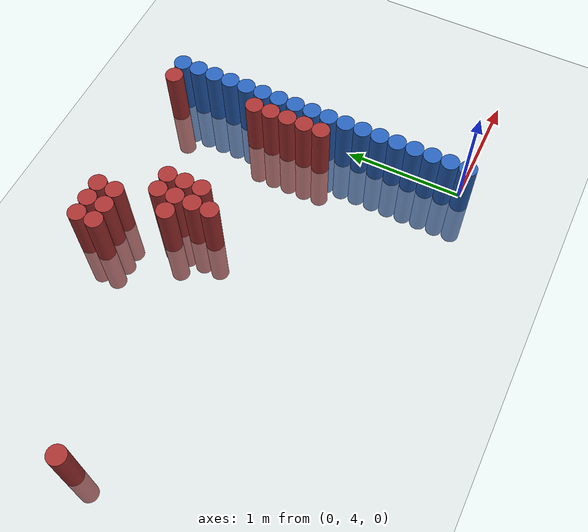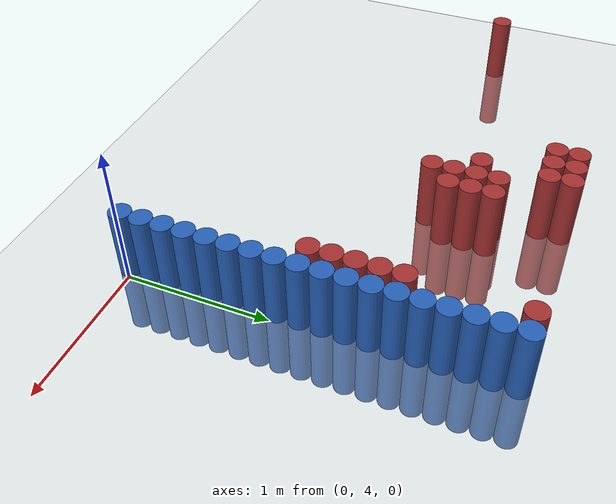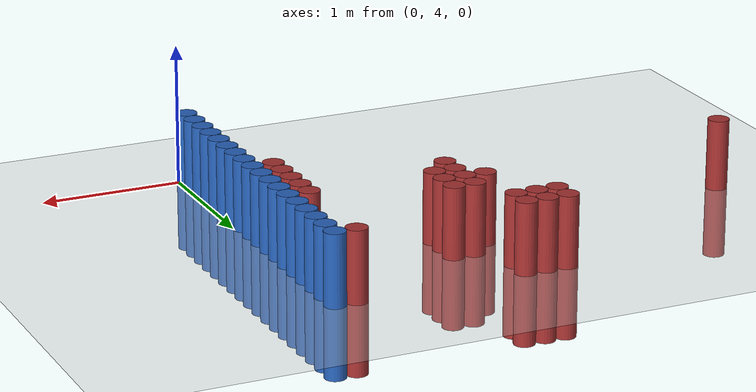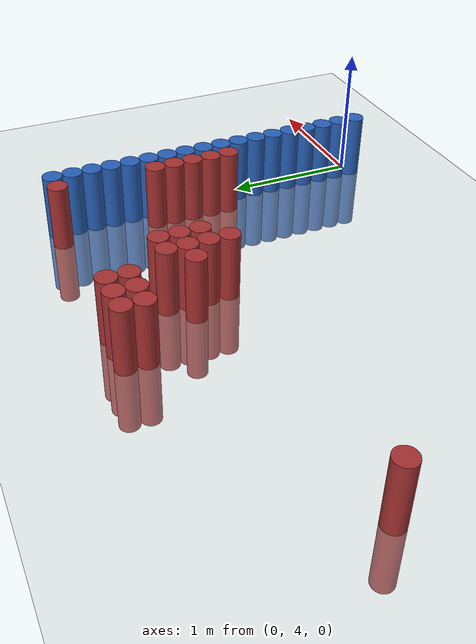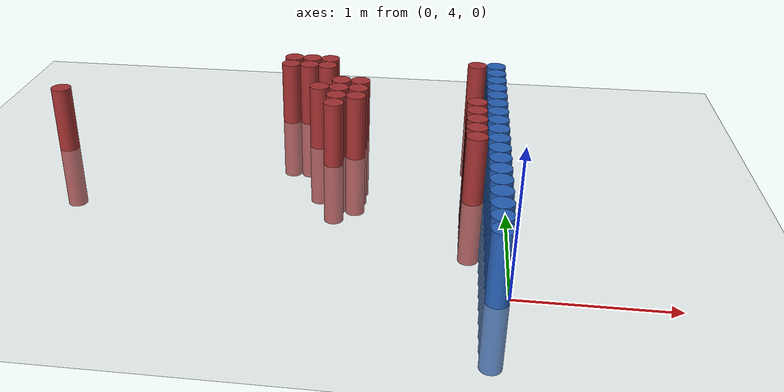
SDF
<sdf version="1.6">
 <world name="default">
  <model name="ground_plane">
   <static>1</static>
   <link name="link">
    <collision name="collision">
     <geometry><plane><normal>0 0 1</normal><size>100 100</size></plane></geometry>
     <surface><friction><ode><mu>100</mu><mu2>50</mu2></ode></friction></surface>
    </collision>
    <visual name="visual">
     <cast_shadows>0</cast_shadows>
     <geometry><plane><normal>0 0 1</normal><size>100 100</size></plane></geometry>
     <material>
      <script><uri>file://media/materials/scripts/gazebo.material</uri><name>Gazebo/Grey</name></script>
     </material>
    </visual>
   </link>
  </model>
  <model name="unit_cylinder_80">
   <static>1</static>
   <pose>-0.075000 3.975000 0.000000 0.000000 0.000000 0.000000</pose>
   <link name="link">
    <inertial>
     <mass>1</mass>
     <inertia><ixx>0.145833</ixx><ixy>0</ixy><ixz>0</ixz><iyy>0.145833</iyy><iyz>0</iyz><izz>0.125</izz></inertia>
    </inertial>
    <collision name="collision">
     <geometry><cylinder><radius>0.075000</radius><length>1</length></cylinder></geometry>
    </collision>
    <visual name="visual">
     <geometry><cylinder><radius>0.075000</radius><length>1</length></cylinder></geometry>
     <material>
      <ambient>0.152000 0.379000 0.720000 1</ambient>
      <diffuse>0.152000 0.379000 0.720000 1</diffuse>
     </material>
     <material>
      <script><name>Gazebo/Grey</name><uri>file://media/materials/scripts/gazebo.material</uri></script>
     </material>
    </visual>
    <sensor name="sensor_contact" type="contact"><contact><collision>collision</collision></contact></sensor>
   </link>
   <plugin filename="gz-sim-touchplugin-system" name="gz::sim::systems::TouchPlugin">
    <target>robot</target>
    <namespace>robot</namespace>
    <time>0.001</time>
    <enabled>true</enabled>
   </plugin>
  </model>
  <model name="unit_cylinder_82">
   <static>1</static>
   <pose>-0.075000 4.125000 0.000000 0.000000 0.000000 0.000000</pose>
   <link name="link">
    <inertial>
     <mass>1</mass>
     <inertia><ixx>0.145833</ixx><ixy>0</ixy><ixz>0</ixz><iyy>0.145833</iyy><iyz>0</iyz><izz>0.125</izz></inertia>
    </inertial>
    <collision name="collision">
     <geometry><cylinder><radius>0.075000</radius><length>1</length></cylinder></geometry>
    </collision>
    <visual name="visual">
     <geometry><cylinder><radius>0.075000</radius><length>1</length></cylinder></geometry>
     <material>
      <ambient>0.152000 0.379000 0.720000 1</ambient>
      <diffuse>0.152000 0.379000 0.720000 1</diffuse>
     </material>
     <material>
      <script><name>Gazebo/Grey</name><uri>file://media/materials/scripts/gazebo.material</uri></script>
     </material>
    </visual>
    <sensor name="sensor_contact" type="contact"><contact><collision>collision</collision></contact></sensor>
   </link>
   <plugin filename="gz-sim-touchplugin-system" name="gz::sim::systems::TouchPlugin">
    <target>robot</target>
    <namespace>robot</namespace>
    <time>0.001</time>
    <enabled>true</enabled>
   </plugin>
  </model>
  <model name="unit_cylinder_84">
   <static>1</static>
   <pose>-0.075000 4.275000 0.000000 0.000000 0.000000 0.000000</pose>
   <link name="link">
    <inertial>
     <mass>1</mass>
     <inertia><ixx>0.145833</ixx><ixy>0</ixy><ixz>0</ixz><iyy>0.145833</iyy><iyz>0</iyz><izz>0.125</izz></inertia>
    </inertial>
    <collision name="collision">
     <geometry><cylinder><radius>0.075000</radius><length>1</length></cylinder></geometry>
    </collision>
    <visual name="visual">
     <geometry><cylinder><radius>0.075000</radius><length>1</length></cylinder></geometry>
     <material>
      <ambient>0.152000 0.379000 0.720000 1</ambient>
      <diffuse>0.152000 0.379000 0.720000 1</diffuse>
     </material>
     <material>
      <script><name>Gazebo/Grey</name><uri>file://media/materials/scripts/gazebo.material</uri></script>
     </material>
    </visual>
    <sensor name="sensor_contact" type="contact"><contact><collision>collision</collision></contact></sensor>
   </link>
   <plugin filename="gz-sim-touchplugin-system" name="gz::sim::systems::TouchPlugin">
    <target>robot</target>
    <namespace>robot</namespace>
    <time>0.001</time>
    <enabled>true</enabled>
   </plugin>
  </model>
  <model name="unit_cylinder_86">
   <static>1</static>
   <pose>-0.075000 4.425000 0.000000 0.000000 0.000000 0.000000</pose>
   <link name="link">
    <inertial>
     <mass>1</mass>
     <inertia><ixx>0.145833</ixx><ixy>0</ixy><ixz>0</ixz><iyy>0.145833</iyy><iyz>0</iyz><izz>0.125</izz></inertia>
    </inertial>
    <collision name="collision">
     <geometry><cylinder><radius>0.075000</radius><length>1</length></cylinder></geometry>
    </collision>
    <visual name="visual">
     <geometry><cylinder><radius>0.075000</radius><length>1</length></cylinder></geometry>
     <material>
      <ambient>0.152000 0.379000 0.720000 1</ambient>
      <diffuse>0.152000 0.379000 0.720000 1</diffuse>
     </material>
     <material>
      <script><name>Gazebo/Grey</name><uri>file://media/materials/scripts/gazebo.material</uri></script>
     </material>
    </visual>
    <sensor name="sensor_contact" type="contact"><contact><collision>collision</collision></contact></sensor>
   </link>
   <plugin filename="gz-sim-touchplugin-system" name="gz::sim::systems::TouchPlugin">
    <target>robot</target>
    <namespace>robot</namespace>
    <time>0.001</time>
    <enabled>true</enabled>
   </plugin>
  </model>
  <model name="unit_cylinder_88">
   <static>1</static>
   <pose>-0.075000 4.575000 0.000000 0.000000 0.000000 0.000000</pose>
   <link name="link">
    <inertial>
     <mass>1</mass>
     <inertia><ixx>0.145833</ixx><ixy>0</ixy><ixz>0</ixz><iyy>0.145833</iyy><iyz>0</iyz><izz>0.125</izz></inertia>
    </inertial>
    <collision name="collision">
     <geometry><cylinder><radius>0.075000</radius><length>1</length></cylinder></geometry>
    </collision>
    <visual name="visual">
     <geometry><cylinder><radius>0.075000</radius><length>1</length></cylinder></geometry>
     <material>
      <ambient>0.152000 0.379000 0.720000 1</ambient>
      <diffuse>0.152000 0.379000 0.720000 1</diffuse>
     </material>
     <material>
      <script><name>Gazebo/Grey</name><uri>file://media/materials/scripts/gazebo.material</uri></script>
     </material>
    </visual>
    <sensor name="sensor_contact" type="contact"><contact><collision>collision</collision></contact></sensor>
   </link>
   <plugin filename="gz-sim-touchplugin-system" name="gz::sim::systems::TouchPlugin">
    <target>robot</target>
    <namespace>robot</namespace>
    <time>0.001</time>
    <enabled>true</enabled>
   </plugin>
  </model>
  <model name="unit_cylinder_90">
   <static>1</static>
   <pose>-0.075000 4.725000 0.000000 0.000000 0.000000 0.000000</pose>
   <link name="link">
    <inertial>
     <mass>1</mass>
     <inertia><ixx>0.145833</ixx><ixy>0</ixy><ixz>0</ixz><iyy>0.145833</iyy><iyz>0</iyz><izz>0.125</izz></inertia>
    </inertial>
    <collision name="collision">
     <geometry><cylinder><radius>0.075000</radius><length>1</length></cylinder></geometry>
    </collision>
    <visual name="visual">
     <geometry><cylinder><radius>0.075000</radius><length>1</length></cylinder></geometry>
     <material>
      <ambient>0.152000 0.379000 0.720000 1</ambient>
      <diffuse>0.152000 0.379000 0.720000 1</diffuse>
     </material>
     <material>
      <script><name>Gazebo/Grey</name><uri>file://media/materials/scripts/gazebo.material</uri></script>
     </material>
    </visual>
    <sensor name="sensor_contact" type="contact"><contact><collision>collision</collision></contact></sensor>
   </link>
   <plugin filename="gz-sim-touchplugin-system" name="gz::sim::systems::TouchPlugin">
    <target>robot</target>
    <namespace>robot</namespace>
    <time>0.001</time>
    <enabled>true</enabled>
   </plugin>
  </model>
  <model name="unit_cylinder_92">
   <static>1</static>
   <pose>-0.075000 4.875000 0.000000 0.000000 0.000000 0.000000</pose>
   <link name="link">
    <inertial>
     <mass>1</mass>
     <inertia><ixx>0.145833</ixx><ixy>0</ixy><ixz>0</ixz><iyy>0.145833</iyy><iyz>0</iyz><izz>0.125</izz></inertia>
    </inertial>
    <collision name="collision">
     <geometry><cylinder><radius>0.075000</radius><length>1</length></cylinder></geometry>
    </collision>
    <visual name="visual">
     <geometry><cylinder><radius>0.075000</radius><length>1</length></cylinder></geometry>
     <material>
      <ambient>0.152000 0.379000 0.720000 1</ambient>
      <diffuse>0.152000 0.379000 0.720000 1</diffuse>
     </material>
     <material>
      <script><name>Gazebo/Grey</name><uri>file://media/materials/scripts/gazebo.material</uri></script>
     </material>
    </visual>
    <sensor name="sensor_contact" type="contact"><contact><collision>collision</collision></contact></sensor>
   </link>
   <plugin filename="gz-sim-touchplugin-system" name="gz::sim::systems::TouchPlugin">
    <target>robot</target>
    <namespace>robot</namespace>
    <time>0.001</time>
    <enabled>true</enabled>
   </plugin>
  </model>
  <model name="unit_cylinder_94">
   <static>1</static>
   <pose>-0.075000 5.025000 0.000000 0.000000 0.000000 0.000000</pose>
   <link name="link">
    <inertial>
     <mass>1</mass>
     <inertia><ixx>0.145833</ixx><ixy>0</ixy><ixz>0</ixz><iyy>0.145833</iyy><iyz>0</iyz><izz>0.125</izz></inertia>
    </inertial>
    <collision name="collision">
     <geometry><cylinder><radius>0.075000</radius><length>1</length></cylinder></geometry>
    </collision>
    <visual name="visual">
     <geometry><cylinder><radius>0.075000</radius><length>1</length></cylinder></geometry>
     <material>
      <ambient>0.152000 0.379000 0.720000 1</ambient>
      <diffuse>0.152000 0.379000 0.720000 1</diffuse>
     </material>
     <material>
      <script><name>Gazebo/Grey</name><uri>file://media/materials/scripts/gazebo.material</uri></script>
     </material>
    </visual>
    <sensor name="sensor_contact" type="contact"><contact><collision>collision</collision></contact></sensor>
   </link>
   <plugin filename="gz-sim-touchplugin-system" name="gz::sim::systems::TouchPlugin">
    <target>robot</target>
    <namespace>robot</namespace>
    <time>0.001</time>
    <enabled>true</enabled>
   </plugin>
  </model>
  <model name="unit_cylinder_179">
   <static>1</static>
   <pose>-3.375000 5.625000 0.000000 0.000000 0.000000 0.000000</pose>
   <link name="link">
    <inertial>
     <mass>1</mass>
     <inertia><ixx>0.145833</ixx><ixy>0</ixy><ixz>0</ixz><iyy>0.145833</iyy><iyz>0</iyz><izz>0.125</izz></inertia>
    </inertial>
    <collision name="collision">
     <geometry><cylinder><radius>0.075000</radius><length>1</length></cylinder></geometry>
    </collision>
    <visual name="visual">
     <geometry><cylinder><radius>0.075000</radius><length>1</length></cylinder></geometry>
     <material>
      <ambient>0.648000 0.192000 0.192000 1</ambient>
      <diffuse>0.648000 0.192000 0.192000 1</diffuse>
     </material>
     <material>
      <script><name>Gazebo/Grey</name><uri>file://media/materials/scripts/gazebo.material</uri></script>
     </material>
    </visual>
    <sensor name="sensor_contact" type="contact"><contact><collision>collision</collision></contact></sensor>
   </link>
   <plugin filename="gz-sim-touchplugin-system" name="gz::sim::systems::TouchPlugin">
    <target>robot</target>
    <namespace>robot</namespace>
    <time>0.001</time>
    <enabled>true</enabled>
   </plugin>
  </model>
  <model name="unit_cylinder_207">
   <static>1</static>
   <pose>-1.725000 6.375000 0.000000 0.000000 0.000000 0.000000</pose>
   <link name="link">
    <inertial>
     <mass>1</mass>
     <inertia><ixx>0.145833</ixx><ixy>0</ixy><ixz>0</ixz><iyy>0.145833</iyy><iyz>0</iyz><izz>0.125</izz></inertia>
    </inertial>
    <collision name="collision">
     <geometry><cylinder><radius>0.075000</radius><length>1</length></cylinder></geometry>
    </collision>
    <visual name="visual">
     <geometry><cylinder><radius>0.075000</radius><length>1</length></cylinder></geometry>
     <material>
      <ambient>0.648000 0.192000 0.192000 1</ambient>
      <diffuse>0.648000 0.192000 0.192000 1</diffuse>
     </material>
     <material>
      <script><name>Gazebo/Grey</name><uri>file://media/materials/scripts/gazebo.material</uri></script>
     </material>
    </visual>
    <sensor name="sensor_contact" type="contact"><contact><collision>collision</collision></contact></sensor>
   </link>
   <plugin filename="gz-sim-touchplugin-system" name="gz::sim::systems::TouchPlugin">
    <target>robot</target>
    <namespace>robot</namespace>
    <time>0.001</time>
    <enabled>true</enabled>
   </plugin>
  </model>
  <model name="unit_cylinder_208">
   <static>1</static>
   <pose>-1.725000 6.525000 0.000000 0.000000 0.000000 0.000000</pose>
   <link name="link">
    <inertial>
     <mass>1</mass>
     <inertia><ixx>0.145833</ixx><ixy>0</ixy><ixz>0</ixz><iyy>0.145833</iyy><iyz>0</iyz><izz>0.125</izz></inertia>
    </inertial>
    <collision name="collision">
     <geometry><cylinder><radius>0.075000</radius><length>1</length></cylinder></geometry>
    </collision>
    <visual name="visual">
     <geometry><cylinder><radius>0.075000</radius><length>1</length></cylinder></geometry>
     <material>
      <ambient>0.648000 0.192000 0.192000 1</ambient>
      <diffuse>0.648000 0.192000 0.192000 1</diffuse>
     </material>
     <material>
      <script><name>Gazebo/Grey</name><uri>file://media/materials/scripts/gazebo.material</uri></script>
     </material>
    </visual>
    <sensor name="sensor_contact" type="contact"><contact><collision>collision</collision></contact></sensor>
   </link>
   <plugin filename="gz-sim-touchplugin-system" name="gz::sim::systems::TouchPlugin">
    <target>robot</target>
    <namespace>robot</namespace>
    <time>0.001</time>
    <enabled>true</enabled>
   </plugin>
  </model>
  <model name="unit_cylinder_211">
   <static>1</static>
   <pose>-1.575000 6.375000 0.000000 0.000000 0.000000 0.000000</pose>
   <link name="link">
    <inertial>
     <mass>1</mass>
     <inertia><ixx>0.145833</ixx><ixy>0</ixy><ixz>0</ixz><iyy>0.145833</iyy><iyz>0</iyz><izz>0.125</izz></inertia>
    </inertial>
    <collision name="collision">
     <geometry><cylinder><radius>0.075000</radius><length>1</length></cylinder></geometry>
    </collision>
    <visual name="visual">
     <geometry><cylinder><radius>0.075000</radius><length>1</length></cylinder></geometry>
     <material>
      <ambient>0.648000 0.192000 0.192000 1</ambient>
      <diffuse>0.648000 0.192000 0.192000 1</diffuse>
     </material>
     <material>
      <script><name>Gazebo/Grey</name><uri>file://media/materials/scripts/gazebo.material</uri></script>
     </material>
    </visual>
    <sensor name="sensor_contact" type="contact"><contact><collision>collision</collision></contact></sensor>
   </link>
   <plugin filename="gz-sim-touchplugin-system" name="gz::sim::systems::TouchPlugin">
    <target>robot</target>
    <namespace>robot</namespace>
    <time>0.001</time>
    <enabled>true</enabled>
   </plugin>
  </model>
  <model name="unit_cylinder_212">
   <static>1</static>
   <pose>-1.575000 6.525000 0.000000 0.000000 0.000000 0.000000</pose>
   <link name="link">
    <inertial>
     <mass>1</mass>
     <inertia><ixx>0.145833</ixx><ixy>0</ixy><ixz>0</ixz><iyy>0.145833</iyy><iyz>0</iyz><izz>0.125</izz></inertia>
    </inertial>
    <collision name="collision">
     <geometry><cylinder><radius>0.075000</radius><length>1</length></cylinder></geometry>
    </collision>
    <visual name="visual">
     <geometry><cylinder><radius>0.075000</radius><length>1</length></cylinder></geometry>
     <material>
      <ambient>0.648000 0.192000 0.192000 1</ambient>
      <diffuse>0.648000 0.192000 0.192000 1</diffuse>
     </material>
     <material>
      <script><name>Gazebo/Grey</name><uri>file://media/materials/scripts/gazebo.material</uri></script>
     </material>
    </visual>
    <sensor name="sensor_contact" type="contact"><contact><collision>collision</collision></contact></sensor>
   </link>
   <plugin filename="gz-sim-touchplugin-system" name="gz::sim::systems::TouchPlugin">
    <target>robot</target>
    <namespace>robot</namespace>
    <time>0.001</time>
    <enabled>true</enabled>
   </plugin>
  </model>
  <model name="unit_cylinder_217">
   <static>1</static>
   <pose>-1.425000 5.925000 0.000000 0.000000 0.000000 0.000000</pose>
   <link name="link">
    <inertial>
     <mass>1</mass>
     <inertia><ixx>0.145833</ixx><ixy>0</ixy><ixz>0</ixz><iyy>0.145833</iyy><iyz>0</iyz><izz>0.125</izz></inertia>
    </inertial>
    <collision name="collision">
     <geometry><cylinder><radius>0.075000</radius><length>1</length></cylinder></geometry>
    </collision>
    <visual name="visual">
     <geometry><cylinder><radius>0.075000</radius><length>1</length></cylinder></geometry>
     <material>
      <ambient>0.648000 0.192000 0.192000 1</ambient>
      <diffuse>0.648000 0.192000 0.192000 1</diffuse>
     </material>
     <material>
      <script><name>Gazebo/Grey</name><uri>file://media/materials/scripts/gazebo.material</uri></script>
     </material>
    </visual>
    <sensor name="sensor_contact" type="contact"><contact><collision>collision</collision></contact></sensor>
   </link>
   <plugin filename="gz-sim-touchplugin-system" name="gz::sim::systems::TouchPlugin">
    <target>robot</target>
    <namespace>robot</namespace>
    <time>0.001</time>
    <enabled>true</enabled>
   </plugin>
  </model>
  <model name="unit_cylinder_218">
   <static>1</static>
   <pose>-1.425000 6.375000 0.000000 0.000000 0.000000 0.000000</pose>
   <link name="link">
    <inertial>
     <mass>1</mass>
     <inertia><ixx>0.145833</ixx><ixy>0</ixy><ixz>0</ixz><iyy>0.145833</iyy><iyz>0</iyz><izz>0.125</izz></inertia>
    </inertial>
    <collision name="collision">
     <geometry><cylinder><radius>0.075000</radius><length>1</length></cylinder></geometry>
    </collision>
    <visual name="visual">
     <geometry><cylinder><radius>0.075000</radius><length>1</length></cylinder></geometry>
     <material>
      <ambient>0.648000 0.192000 0.192000 1</ambient>
      <diffuse>0.648000 0.192000 0.192000 1</diffuse>
     </material>
     <material>
      <script><name>Gazebo/Grey</name><uri>file://media/materials/scripts/gazebo.material</uri></script>
     </material>
    </visual>
    <sensor name="sensor_contact" type="contact"><contact><collision>collision</collision></contact></sensor>
   </link>
   <plugin filename="gz-sim-touchplugin-system" name="gz::sim::systems::TouchPlugin">
    <target>robot</target>
    <namespace>robot</namespace>
    <time>0.001</time>
    <enabled>true</enabled>
   </plugin>
  </model>
  <model name="unit_cylinder_219">
   <static>1</static>
   <pose>-1.425000 6.525000 0.000000 0.000000 0.000000 0.000000</pose>
   <link name="link">
    <inertial>
     <mass>1</mass>
     <inertia><ixx>0.145833</ixx><ixy>0</ixy><ixz>0</ixz><iyy>0.145833</iyy><iyz>0</iyz><izz>0.125</izz></inertia>
    </inertial>
    <collision name="collision">
     <geometry><cylinder><radius>0.075000</radius><length>1</length></cylinder></geometry>
    </collision>
    <visual name="visual">
     <geometry><cylinder><radius>0.075000</radius><length>1</length></cylinder></geometry>
     <material>
      <ambient>0.648000 0.192000 0.192000 1</ambient>
      <diffuse>0.648000 0.192000 0.192000 1</diffuse>
     </material>
     <material>
      <script><name>Gazebo/Grey</name><uri>file://media/materials/scripts/gazebo.material</uri></script>
     </material>
    </visual>
    <sensor name="sensor_contact" type="contact"><contact><collision>collision</collision></contact></sensor>
   </link>
   <plugin filename="gz-sim-touchplugin-system" name="gz::sim::systems::TouchPlugin">
    <target>robot</target>
    <namespace>robot</namespace>
    <time>0.001</time>
    <enabled>true</enabled>
   </plugin>
  </model>
  <model name="unit_cylinder_224">
   <static>1</static>
   <pose>-1.275000 5.625000 0.000000 0.000000 0.000000 0.000000</pose>
   <link name="link">
    <inertial>
     <mass>1</mass>
     <inertia><ixx>0.145833</ixx><ixy>0</ixy><ixz>0</ixz><iyy>0.145833</iyy><iyz>0</iyz><izz>0.125</izz></inertia>
    </inertial>
    <collision name="collision">
     <geometry><cylinder><radius>0.075000</radius><length>1</length></cylinder></geometry>
    </collision>
    <visual name="visual">
     <geometry><cylinder><radius>0.075000</radius><length>1</length></cylinder></geometry>
     <material>
      <ambient>0.648000 0.192000 0.192000 1</ambient>
      <diffuse>0.648000 0.192000 0.192000 1</diffuse>
     </material>
     <material>
      <script><name>Gazebo/Grey</name><uri>file://media/materials/scripts/gazebo.material</uri></script>
     </material>
    </visual>
    <sensor name="sensor_contact" type="contact"><contact><collision>collision</collision></contact></sensor>
   </link>
   <plugin filename="gz-sim-touchplugin-system" name="gz::sim::systems::TouchPlugin">
    <target>robot</target>
    <namespace>robot</namespace>
    <time>0.001</time>
    <enabled>true</enabled>
   </plugin>
  </model>
  <model name="unit_cylinder_225">
   <static>1</static>
   <pose>-1.275000 5.775000 0.000000 0.000000 0.000000 0.000000</pose>
   <link name="link">
    <inertial>
     <mass>1</mass>
     <inertia><ixx>0.145833</ixx><ixy>0</ixy><ixz>0</ixz><iyy>0.145833</iyy><iyz>0</iyz><izz>0.125</izz></inertia>
    </inertial>
    <collision name="collision">
     <geometry><cylinder><radius>0.075000</radius><length>1</length></cylinder></geometry>
    </collision>
    <visual name="visual">
     <geometry><cylinder><radius>0.075000</radius><length>1</length></cylinder></geometry>
     <material>
      <ambient>0.648000 0.192000 0.192000 1</ambient>
      <diffuse>0.648000 0.192000 0.192000 1</diffuse>
     </material>
     <material>
      <script><name>Gazebo/Grey</name><uri>file://media/materials/scripts/gazebo.material</uri></script>
     </material>
    </visual>
    <sensor name="sensor_contact" type="contact"><contact><collision>collision</collision></contact></sensor>
   </link>
   <plugin filename="gz-sim-touchplugin-system" name="gz::sim::systems::TouchPlugin">
    <target>robot</target>
    <namespace>robot</namespace>
    <time>0.001</time>
    <enabled>true</enabled>
   </plugin>
  </model>
  <model name="unit_cylinder_226">
   <static>1</static>
   <pose>-1.275000 5.925000 0.000000 0.000000 0.000000 0.000000</pose>
   <link name="link">
    <inertial>
     <mass>1</mass>
     <inertia><ixx>0.145833</ixx><ixy>0</ixy><ixz>0</ixz><iyy>0.145833</iyy><iyz>0</iyz><izz>0.125</izz></inertia>
    </inertial>
    <collision name="collision">
     <geometry><cylinder><radius>0.075000</radius><length>1</length></cylinder></geometry>
    </collision>
    <visual name="visual">
     <geometry><cylinder><radius>0.075000</radius><length>1</length></cylinder></geometry>
     <material>
      <ambient>0.648000 0.192000 0.192000 1</ambient>
      <diffuse>0.648000 0.192000 0.192000 1</diffuse>
     </material>
     <material>
      <script><name>Gazebo/Grey</name><uri>file://media/materials/scripts/gazebo.material</uri></script>
     </material>
    </visual>
    <sensor name="sensor_contact" type="contact"><contact><collision>collision</collision></contact></sensor>
   </link>
   <plugin filename="gz-sim-touchplugin-system" name="gz::sim::systems::TouchPlugin">
    <target>robot</target>
    <namespace>robot</namespace>
    <time>0.001</time>
    <enabled>true</enabled>
   </plugin>
  </model>
  <model name="unit_cylinder_227">
   <static>1</static>
   <pose>-1.275000 6.075000 0.000000 0.000000 0.000000 0.000000</pose>
   <link name="link">
    <inertial>
     <mass>1</mass>
     <inertia><ixx>0.145833</ixx><ixy>0</ixy><ixz>0</ixz><iyy>0.145833</iyy><iyz>0</iyz><izz>0.125</izz></inertia>
    </inertial>
    <collision name="collision">
     <geometry><cylinder><radius>0.075000</radius><length>1</length></cylinder></geometry>
    </collision>
    <visual name="visual">
     <geometry><cylinder><radius>0.075000</radius><length>1</length></cylinder></geometry>
     <material>
      <ambient>0.648000 0.192000 0.192000 1</ambient>
      <diffuse>0.648000 0.192000 0.192000 1</diffuse>
     </material>
     <material>
      <script><name>Gazebo/Grey</name><uri>file://media/materials/scripts/gazebo.material</uri></script>
     </material>
    </visual>
    <sensor name="sensor_contact" type="contact"><contact><collision>collision</collision></contact></sensor>
   </link>
   <plugin filename="gz-sim-touchplugin-system" name="gz::sim::systems::TouchPlugin">
    <target>robot</target>
    <namespace>robot</namespace>
    <time>0.001</time>
    <enabled>true</enabled>
   </plugin>
  </model>
  <model name="unit_cylinder_232">
   <static>1</static>
   <pose>-1.125000 5.775000 0.000000 0.000000 0.000000 0.000000</pose>
   <link name="link">
    <inertial>
     <mass>1</mass>
     <inertia><ixx>0.145833</ixx><ixy>0</ixy><ixz>0</ixz><iyy>0.145833</iyy><iyz>0</iyz><izz>0.125</izz></inertia>
    </inertial>
    <collision name="collision">
     <geometry><cylinder><radius>0.075000</radius><length>1</length></cylinder></geometry>
    </collision>
    <visual name="visual">
     <geometry><cylinder><radius>0.075000</radius><length>1</length></cylinder></geometry>
     <material>
      <ambient>0.648000 0.192000 0.192000 1</ambient>
      <diffuse>0.648000 0.192000 0.192000 1</diffuse>
     </material>
     <material>
      <script><name>Gazebo/Grey</name><uri>file://media/materials/scripts/gazebo.material</uri></script>
     </material>
    </visual>
    <sensor name="sensor_contact" type="contact"><contact><collision>collision</collision></contact></sensor>
   </link>
   <plugin filename="gz-sim-touchplugin-system" name="gz::sim::systems::TouchPlugin">
    <target>robot</target>
    <namespace>robot</namespace>
    <time>0.001</time>
    <enabled>true</enabled>
   </plugin>
  </model>
  <model name="unit_cylinder_233">
   <static>1</static>
   <pose>-1.125000 5.925000 0.000000 0.000000 0.000000 0.000000</pose>
   <link name="link">
    <inertial>
     <mass>1</mass>
     <inertia><ixx>0.145833</ixx><ixy>0</ixy><ixz>0</ixz><iyy>0.145833</iyy><iyz>0</iyz><izz>0.125</izz></inertia>
    </inertial>
    <collision name="collision">
     <geometry><cylinder><radius>0.075000</radius><length>1</length></cylinder></geometry>
    </collision>
    <visual name="visual">
     <geometry><cylinder><radius>0.075000</radius><length>1</length></cylinder></geometry>
     <material>
      <ambient>0.648000 0.192000 0.192000 1</ambient>
      <diffuse>0.648000 0.192000 0.192000 1</diffuse>
     </material>
     <material>
      <script><name>Gazebo/Grey</name><uri>file://media/materials/scripts/gazebo.material</uri></script>
     </material>
    </visual>
    <sensor name="sensor_contact" type="contact"><contact><collision>collision</collision></contact></sensor>
   </link>
   <plugin filename="gz-sim-touchplugin-system" name="gz::sim::systems::TouchPlugin">
    <target>robot</target>
    <namespace>robot</namespace>
    <time>0.001</time>
    <enabled>true</enabled>
   </plugin>
  </model>
  <model name="unit_cylinder_234">
   <static>1</static>
   <pose>-1.125000 6.075000 0.000000 0.000000 0.000000 0.000000</pose>
   <link name="link">
    <inertial>
     <mass>1</mass>
     <inertia><ixx>0.145833</ixx><ixy>0</ixy><ixz>0</ixz><iyy>0.145833</iyy><iyz>0</iyz><izz>0.125</izz></inertia>
    </inertial>
    <collision name="collision">
     <geometry><cylinder><radius>0.075000</radius><length>1</length></cylinder></geometry>
    </collision>
    <visual name="visual">
     <geometry><cylinder><radius>0.075000</radius><length>1</length></cylinder></geometry>
     <material>
      <ambient>0.648000 0.192000 0.192000 1</ambient>
      <diffuse>0.648000 0.192000 0.192000 1</diffuse>
     </material>
     <material>
      <script><name>Gazebo/Grey</name><uri>file://media/materials/scripts/gazebo.material</uri></script>
     </material>
    </visual>
    <sensor name="sensor_contact" type="contact"><contact><collision>collision</collision></contact></sensor>
   </link>
   <plugin filename="gz-sim-touchplugin-system" name="gz::sim::systems::TouchPlugin">
    <target>robot</target>
    <namespace>robot</namespace>
    <time>0.001</time>
    <enabled>true</enabled>
   </plugin>
  </model>
  <model name="unit_cylinder_271">
   <static>1</static>
   <pose>-0.225000 5.175000 0.000000 0.000000 0.000000 0.000000</pose>
   <link name="link">
    <inertial>
     <mass>1</mass>
     <inertia><ixx>0.145833</ixx><ixy>0</ixy><ixz>0</ixz><iyy>0.145833</iyy><iyz>0</iyz><izz>0.125</izz></inertia>
    </inertial>
    <collision name="collision">
     <geometry><cylinder><radius>0.075000</radius><length>1</length></cylinder></geometry>
    </collision>
    <visual name="visual">
     <geometry><cylinder><radius>0.075000</radius><length>1</length></cylinder></geometry>
     <material>
      <ambient>0.648000 0.192000 0.192000 1</ambient>
      <diffuse>0.648000 0.192000 0.192000 1</diffuse>
     </material>
     <material>
      <script><name>Gazebo/Grey</name><uri>file://media/materials/scripts/gazebo.material</uri></script>
     </material>
    </visual>
    <sensor name="sensor_contact" type="contact"><contact><collision>collision</collision></contact></sensor>
   </link>
   <plugin filename="gz-sim-touchplugin-system" name="gz::sim::systems::TouchPlugin">
    <target>robot</target>
    <namespace>robot</namespace>
    <time>0.001</time>
    <enabled>true</enabled>
   </plugin>
  </model>
  <model name="unit_cylinder_272">
   <static>1</static>
   <pose>-0.225000 5.325000 0.000000 0.000000 0.000000 0.000000</pose>
   <link name="link">
    <inertial>
     <mass>1</mass>
     <inertia><ixx>0.145833</ixx><ixy>0</ixy><ixz>0</ixz><iyy>0.145833</iyy><iyz>0</iyz><izz>0.125</izz></inertia>
    </inertial>
    <collision name="collision">
     <geometry><cylinder><radius>0.075000</radius><length>1</length></cylinder></geometry>
    </collision>
    <visual name="visual">
     <geometry><cylinder><radius>0.075000</radius><length>1</length></cylinder></geometry>
     <material>
      <ambient>0.648000 0.192000 0.192000 1</ambient>
      <diffuse>0.648000 0.192000 0.192000 1</diffuse>
     </material>
     <material>
      <script><name>Gazebo/Grey</name><uri>file://media/materials/scripts/gazebo.material</uri></script>
     </material>
    </visual>
    <sensor name="sensor_contact" type="contact"><contact><collision>collision</collision></contact></sensor>
   </link>
   <plugin filename="gz-sim-touchplugin-system" name="gz::sim::systems::TouchPlugin">
    <target>robot</target>
    <namespace>robot</namespace>
    <time>0.001</time>
    <enabled>true</enabled>
   </plugin>
  </model>
  <model name="unit_cylinder_273">
   <static>1</static>
   <pose>-0.225000 5.475000 0.000000 0.000000 0.000000 0.000000</pose>
   <link name="link">
    <inertial>
     <mass>1</mass>
     <inertia><ixx>0.145833</ixx><ixy>0</ixy><ixz>0</ixz><iyy>0.145833</iyy><iyz>0</iyz><izz>0.125</izz></inertia>
    </inertial>
    <collision name="collision">
     <geometry><cylinder><radius>0.075000</radius><length>1</length></cylinder></geometry>
    </collision>
    <visual name="visual">
     <geometry><cylinder><radius>0.075000</radius><length>1</length></cylinder></geometry>
     <material>
      <ambient>0.648000 0.192000 0.192000 1</ambient>
      <diffuse>0.648000 0.192000 0.192000 1</diffuse>
     </material>
     <material>
      <script><name>Gazebo/Grey</name><uri>file://media/materials/scripts/gazebo.material</uri></script>
     </material>
    </visual>
    <sensor name="sensor_contact" type="contact"><contact><collision>collision</collision></contact></sensor>
   </link>
   <plugin filename="gz-sim-touchplugin-system" name="gz::sim::systems::TouchPlugin">
    <target>robot</target>
    <namespace>robot</namespace>
    <time>0.001</time>
    <enabled>true</enabled>
   </plugin>
  </model>
  <model name="unit_cylinder_274">
   <static>1</static>
   <pose>-0.225000 5.625000 0.000000 0.000000 0.000000 0.000000</pose>
   <link name="link">
    <inertial>
     <mass>1</mass>
     <inertia><ixx>0.145833</ixx><ixy>0</ixy><ixz>0</ixz><iyy>0.145833</iyy><iyz>0</iyz><izz>0.125</izz></inertia>
    </inertial>
    <collision name="collision">
     <geometry><cylinder><radius>0.075000</radius><length>1</length></cylinder></geometry>
    </collision>
    <visual name="visual">
     <geometry><cylinder><radius>0.075000</radius><length>1</length></cylinder></geometry>
     <material>
      <ambient>0.648000 0.192000 0.192000 1</ambient>
      <diffuse>0.648000 0.192000 0.192000 1</diffuse>
     </material>
     <material>
      <script><name>Gazebo/Grey</name><uri>file://media/materials/scripts/gazebo.material</uri></script>
     </material>
    </visual>
    <sensor name="sensor_contact" type="contact"><contact><collision>collision</collision></contact></sensor>
   </link>
   <plugin filename="gz-sim-touchplugin-system" name="gz::sim::systems::TouchPlugin">
    <target>robot</target>
    <namespace>robot</namespace>
    <time>0.001</time>
    <enabled>true</enabled>
   </plugin>
  </model>
  <model name="unit_cylinder_275">
   <static>1</static>
   <pose>-0.225000 5.775000 0.000000 0.000000 0.000000 0.000000</pose>
   <link name="link">
    <inertial>
     <mass>1</mass>
     <inertia><ixx>0.145833</ixx><ixy>0</ixy><ixz>0</ixz><iyy>0.145833</iyy><iyz>0</iyz><izz>0.125</izz></inertia>
    </inertial>
    <collision name="collision">
     <geometry><cylinder><radius>0.075000</radius><length>1</length></cylinder></geometry>
    </collision>
    <visual name="visual">
     <geometry><cylinder><radius>0.075000</radius><length>1</length></cylinder></geometry>
     <material>
      <ambient>0.648000 0.192000 0.192000 1</ambient>
      <diffuse>0.648000 0.192000 0.192000 1</diffuse>
     </material>
     <material>
      <script><name>Gazebo/Grey</name><uri>file://media/materials/scripts/gazebo.material</uri></script>
     </material>
    </visual>
    <sensor name="sensor_contact" type="contact"><contact><collision>collision</collision></contact></sensor>
   </link>
   <plugin filename="gz-sim-touchplugin-system" name="gz::sim::systems::TouchPlugin">
    <target>robot</target>
    <namespace>robot</namespace>
    <time>0.001</time>
    <enabled>true</enabled>
   </plugin>
  </model>
  <model name="unit_cylinder_276">
   <static>1</static>
   <pose>-0.225000 6.525000 0.000000 0.000000 0.000000 0.000000</pose>
   <link name="link">
    <inertial>
     <mass>1</mass>
     <inertia><ixx>0.145833</ixx><ixy>0</ixy><ixz>0</ixz><iyy>0.145833</iyy><iyz>0</iyz><izz>0.125</izz></inertia>
    </inertial>
    <collision name="collision">
     <geometry><cylinder><radius>0.075000</radius><length>1</length></cylinder></geometry>
    </collision>
    <visual name="visual">
     <geometry><cylinder><radius>0.075000</radius><length>1</length></cylinder></geometry>
     <material>
      <ambient>0.648000 0.192000 0.192000 1</ambient>
      <diffuse>0.648000 0.192000 0.192000 1</diffuse>
     </material>
     <material>
      <script><name>Gazebo/Grey</name><uri>file://media/materials/scripts/gazebo.material</uri></script>
     </material>
    </visual>
    <sensor name="sensor_contact" type="contact"><contact><collision>collision</collision></contact></sensor>
   </link>
   <plugin filename="gz-sim-touchplugin-system" name="gz::sim::systems::TouchPlugin">
    <target>robot</target>
    <namespace>robot</namespace>
    <time>0.001</time>
    <enabled>true</enabled>
   </plugin>
  </model>
  <model name="unit_cylinder_288">
   <static>1</static>
   <pose>-0.075000 5.175000 0.000000 0.000000 0.000000 0.000000</pose>
   <link name="link">
    <inertial>
     <mass>1</mass>
     <inertia><ixx>0.145833</ixx><ixy>0</ixy><ixz>0</ixz><iyy>0.145833</iyy><iyz>0</iyz><izz>0.125</izz></inertia>
    </inertial>
    <collision name="collision">
     <geometry><cylinder><radius>0.075000</radius><length>1</length></cylinder></geometry>
    </collision>
    <visual name="visual">
     <geometry><cylinder><radius>0.075000</radius><length>1</length></cylinder></geometry>
     <material>
      <ambient>0.152000 0.379000 0.720000 1</ambient>
      <diffuse>0.152000 0.379000 0.720000 1</diffuse>
     </material>
     <material>
      <script><name>Gazebo/Grey</name><uri>file://media/materials/scripts/gazebo.material</uri></script>
     </material>
    </visual>
    <sensor name="sensor_contact" type="contact"><contact><collision>collision</collision></contact></sensor>
   </link>
   <plugin filename="gz-sim-touchplugin-system" name="gz::sim::systems::TouchPlugin">
    <target>robot</target>
    <namespace>robot</namespace>
    <time>0.001</time>
    <enabled>true</enabled>
   </plugin>
  </model>
  <model name="unit_cylinder_289">
   <static>1</static>
   <pose>-0.075000 5.325000 0.000000 0.000000 0.000000 0.000000</pose>
   <link name="link">
    <inertial>
     <mass>1</mass>
     <inertia><ixx>0.145833</ixx><ixy>0</ixy><ixz>0</ixz><iyy>0.145833</iyy><iyz>0</iyz><izz>0.125</izz></inertia>
    </inertial>
    <collision name="collision">
     <geometry><cylinder><radius>0.075000</radius><length>1</length></cylinder></geometry>
    </collision>
    <visual name="visual">
     <geometry><cylinder><radius>0.075000</radius><length>1</length></cylinder></geometry>
     <material>
      <ambient>0.152000 0.379000 0.720000 1</ambient>
      <diffuse>0.152000 0.379000 0.720000 1</diffuse>
     </material>
     <material>
      <script><name>Gazebo/Grey</name><uri>file://media/materials/scripts/gazebo.material</uri></script>
     </material>
    </visual>
    <sensor name="sensor_contact" type="contact"><contact><collision>collision</collision></contact></sensor>
   </link>
   <plugin filename="gz-sim-touchplugin-system" name="gz::sim::systems::TouchPlugin">
    <target>robot</target>
    <namespace>robot</namespace>
    <time>0.001</time>
    <enabled>true</enabled>
   </plugin>
  </model>
  <model name="unit_cylinder_290">
   <static>1</static>
   <pose>-0.075000 5.475000 0.000000 0.000000 0.000000 0.000000</pose>
   <link name="link">
    <inertial>
     <mass>1</mass>
     <inertia><ixx>0.145833</ixx><ixy>0</ixy><ixz>0</ixz><iyy>0.145833</iyy><iyz>0</iyz><izz>0.125</izz></inertia>
    </inertial>
    <collision name="collision">
     <geometry><cylinder><radius>0.075000</radius><length>1</length></cylinder></geometry>
    </collision>
    <visual name="visual">
     <geometry><cylinder><radius>0.075000</radius><length>1</length></cylinder></geometry>
     <material>
      <ambient>0.152000 0.379000 0.720000 1</ambient>
      <diffuse>0.152000 0.379000 0.720000 1</diffuse>
     </material>
     <material>
      <script><name>Gazebo/Grey</name><uri>file://media/materials/scripts/gazebo.material</uri></script>
     </material>
    </visual>
    <sensor name="sensor_contact" type="contact"><contact><collision>collision</collision></contact></sensor>
   </link>
   <plugin filename="gz-sim-touchplugin-system" name="gz::sim::systems::TouchPlugin">
    <target>robot</target>
    <namespace>robot</namespace>
    <time>0.001</time>
    <enabled>true</enabled>
   </plugin>
  </model>
  <model name="unit_cylinder_291">
   <static>1</static>
   <pose>-0.075000 5.625000 0.000000 0.000000 0.000000 0.000000</pose>
   <link name="link">
    <inertial>
     <mass>1</mass>
     <inertia><ixx>0.145833</ixx><ixy>0</ixy><ixz>0</ixz><iyy>0.145833</iyy><iyz>0</iyz><izz>0.125</izz></inertia>
    </inertial>
    <collision name="collision">
     <geometry><cylinder><radius>0.075000</radius><length>1</length></cylinder></geometry>
    </collision>
    <visual name="visual">
     <geometry><cylinder><radius>0.075000</radius><length>1</length></cylinder></geometry>
     <material>
      <ambient>0.152000 0.379000 0.720000 1</ambient>
      <diffuse>0.152000 0.379000 0.720000 1</diffuse>
     </material>
     <material>
      <script><name>Gazebo/Grey</name><uri>file://media/materials/scripts/gazebo.material</uri></script>
     </material>
    </visual>
    <sensor name="sensor_contact" type="contact"><contact><collision>collision</collision></contact></sensor>
   </link>
   <plugin filename="gz-sim-touchplugin-system" name="gz::sim::systems::TouchPlugin">
    <target>robot</target>
    <namespace>robot</namespace>
    <time>0.001</time>
    <enabled>true</enabled>
   </plugin>
  </model>
  <model name="unit_cylinder_292">
   <static>1</static>
   <pose>-0.075000 5.775000 0.000000 0.000000 0.000000 0.000000</pose>
   <link name="link">
    <inertial>
     <mass>1</mass>
     <inertia><ixx>0.145833</ixx><ixy>0</ixy><ixz>0</ixz><iyy>0.145833</iyy><iyz>0</iyz><izz>0.125</izz></inertia>
    </inertial>
    <collision name="collision">
     <geometry><cylinder><radius>0.075000</radius><length>1</length></cylinder></geometry>
    </collision>
    <visual name="visual">
     <geometry><cylinder><radius>0.075000</radius><length>1</length></cylinder></geometry>
     <material>
      <ambient>0.152000 0.379000 0.720000 1</ambient>
      <diffuse>0.152000 0.379000 0.720000 1</diffuse>
     </material>
     <material>
      <script><name>Gazebo/Grey</name><uri>file://media/materials/scripts/gazebo.material</uri></script>
     </material>
    </visual>
    <sensor name="sensor_contact" type="contact"><contact><collision>collision</collision></contact></sensor>
   </link>
   <plugin filename="gz-sim-touchplugin-system" name="gz::sim::systems::TouchPlugin">
    <target>robot</target>
    <namespace>robot</namespace>
    <time>0.001</time>
    <enabled>true</enabled>
   </plugin>
  </model>
  <model name="unit_cylinder_293">
   <static>1</static>
   <pose>-0.075000 5.925000 0.000000 0.000000 0.000000 0.000000</pose>
   <link name="link">
    <inertial>
     <mass>1</mass>
     <inertia><ixx>0.145833</ixx><ixy>0</ixy><ixz>0</ixz><iyy>0.145833</iyy><iyz>0</iyz><izz>0.125</izz></inertia>
    </inertial>
    <collision name="collision">
     <geometry><cylinder><radius>0.075000</radius><length>1</length></cylinder></geometry>
    </collision>
    <visual name="visual">
     <geometry><cylinder><radius>0.075000</radius><length>1</length></cylinder></geometry>
     <material>
      <ambient>0.152000 0.379000 0.720000 1</ambient>
      <diffuse>0.152000 0.379000 0.720000 1</diffuse>
     </material>
     <material>
      <script><name>Gazebo/Grey</name><uri>file://media/materials/scripts/gazebo.material</uri></script>
     </material>
    </visual>
    <sensor name="sensor_contact" type="contact"><contact><collision>collision</collision></contact></sensor>
   </link>
   <plugin filename="gz-sim-touchplugin-system" name="gz::sim::systems::TouchPlugin">
    <target>robot</target>
    <namespace>robot</namespace>
    <time>0.001</time>
    <enabled>true</enabled>
   </plugin>
  </model>
  <model name="unit_cylinder_294">
   <static>1</static>
   <pose>-0.075000 6.075000 0.000000 0.000000 0.000000 0.000000</pose>
   <link name="link">
    <inertial>
     <mass>1</mass>
     <inertia><ixx>0.145833</ixx><ixy>0</ixy><ixz>0</ixz><iyy>0.145833</iyy><iyz>0</iyz><izz>0.125</izz></inertia>
    </inertial>
    <collision name="collision">
     <geometry><cylinder><radius>0.075000</radius><length>1</length></cylinder></geometry>
    </collision>
    <visual name="visual">
     <geometry><cylinder><radius>0.075000</radius><length>1</length></cylinder></geometry>
     <material>
      <ambient>0.152000 0.379000 0.720000 1</ambient>
      <diffuse>0.152000 0.379000 0.720000 1</diffuse>
     </material>
     <material>
      <script><name>Gazebo/Grey</name><uri>file://media/materials/scripts/gazebo.material</uri></script>
     </material>
    </visual>
    <sensor name="sensor_contact" type="contact"><contact><collision>collision</collision></contact></sensor>
   </link>
   <plugin filename="gz-sim-touchplugin-system" name="gz::sim::systems::TouchPlugin">
    <target>robot</target>
    <namespace>robot</namespace>
    <time>0.001</time>
    <enabled>true</enabled>
   </plugin>
  </model>
  <model name="unit_cylinder_295">
   <static>1</static>
   <pose>-0.075000 6.225000 0.000000 0.000000 0.000000 0.000000</pose>
   <link name="link">
    <inertial>
     <mass>1</mass>
     <inertia><ixx>0.145833</ixx><ixy>0</ixy><ixz>0</ixz><iyy>0.145833</iyy><iyz>0</iyz><izz>0.125</izz></inertia>
    </inertial>
    <collision name="collision">
     <geometry><cylinder><radius>0.075000</radius><length>1</length></cylinder></geometry>
    </collision>
    <visual name="visual">
     <geometry><cylinder><radius>0.075000</radius><length>1</length></cylinder></geometry>
     <material>
      <ambient>0.152000 0.379000 0.720000 1</ambient>
      <diffuse>0.152000 0.379000 0.720000 1</diffuse>
     </material>
     <material>
      <script><name>Gazebo/Grey</name><uri>file://media/materials/scripts/gazebo.material</uri></script>
     </material>
    </visual>
    <sensor name="sensor_contact" type="contact"><contact><collision>collision</collision></contact></sensor>
   </link>
   <plugin filename="gz-sim-touchplugin-system" name="gz::sim::systems::TouchPlugin">
    <target>robot</target>
    <namespace>robot</namespace>
    <time>0.001</time>
    <enabled>true</enabled>
   </plugin>
  </model>
  <model name="unit_cylinder_296">
   <static>1</static>
   <pose>-0.075000 6.375000 0.000000 0.000000 0.000000 0.000000</pose>
   <link name="link">
    <inertial>
     <mass>1</mass>
     <inertia><ixx>0.145833</ixx><ixy>0</ixy><ixz>0</ixz><iyy>0.145833</iyy><iyz>0</iyz><izz>0.125</izz></inertia>
    </inertial>
    <collision name="collision">
     <geometry><cylinder><radius>0.075000</radius><length>1</length></cylinder></geometry>
    </collision>
    <visual name="visual">
     <geometry><cylinder><radius>0.075000</radius><length>1</length></cylinder></geometry>
     <material>
      <ambient>0.152000 0.379000 0.720000 1</ambient>
      <diffuse>0.152000 0.379000 0.720000 1</diffuse>
     </material>
     <material>
      <script><name>Gazebo/Grey</name><uri>file://media/materials/scripts/gazebo.material</uri></script>
     </material>
    </visual>
    <sensor name="sensor_contact" type="contact"><contact><collision>collision</collision></contact></sensor>
   </link>
   <plugin filename="gz-sim-touchplugin-system" name="gz::sim::systems::TouchPlugin">
    <target>robot</target>
    <namespace>robot</namespace>
    <time>0.001</time>
    <enabled>true</enabled>
   </plugin>
  </model>
  <model name="unit_cylinder_297">
   <static>1</static>
   <pose>-0.075000 6.525000 0.000000 0.000000 0.000000 0.000000</pose>
   <link name="link">
    <inertial>
     <mass>1</mass>
     <inertia><ixx>0.145833</ixx><ixy>0</ixy><ixz>0</ixz><iyy>0.145833</iyy><iyz>0</iyz><izz>0.125</izz></inertia>
    </inertial>
    <collision name="collision">
     <geometry><cylinder><radius>0.075000</radius><length>1</length></cylinder></geometry>
    </collision>
    <visual name="visual">
     <geometry><cylinder><radius>0.075000</radius><length>1</length></cylinder></geometry>
     <material>
      <ambient>0.152000 0.379000 0.720000 1</ambient>
      <diffuse>0.152000 0.379000 0.720000 1</diffuse>
     </material>
     <material>
      <script><name>Gazebo/Grey</name><uri>file://media/materials/scripts/gazebo.material</uri></script>
     </material>
    </visual>
    <sensor name="sensor_contact" type="contact"><contact><collision>collision</collision></contact></sensor>
   </link>
   <plugin filename="gz-sim-touchplugin-system" name="gz::sim::systems::TouchPlugin">
    <target>robot</target>
    <namespace>robot</namespace>
    <time>0.001</time>
    <enabled>true</enabled>
   </plugin>
  </model>
 </world>
</sdf>
